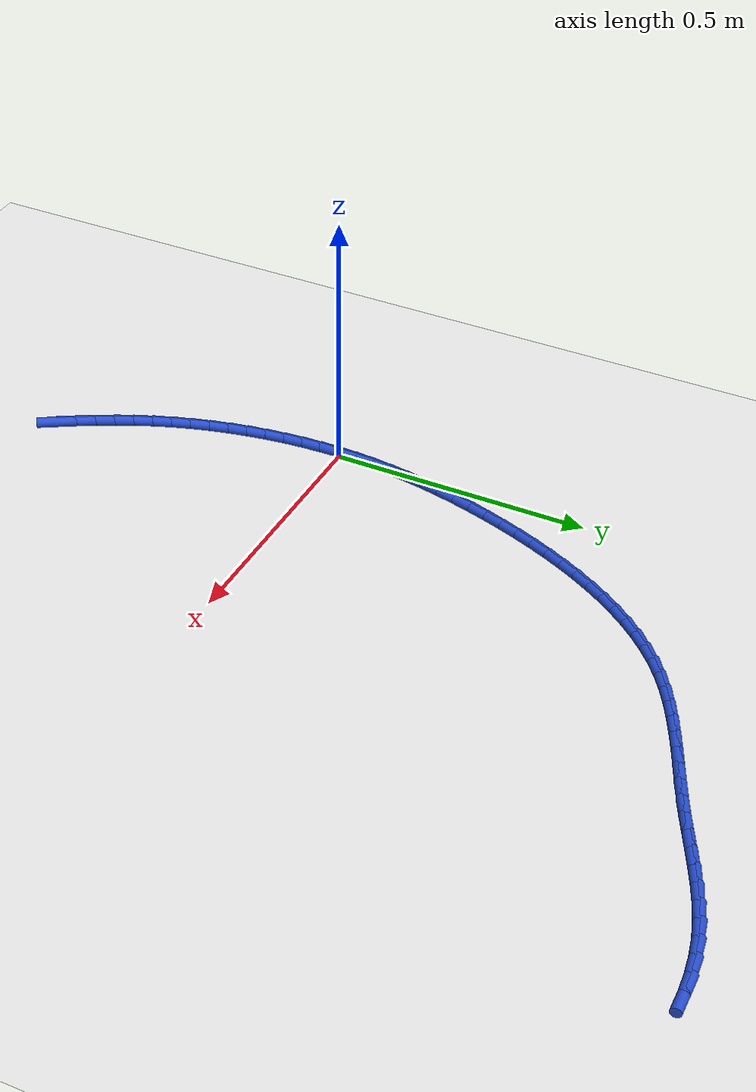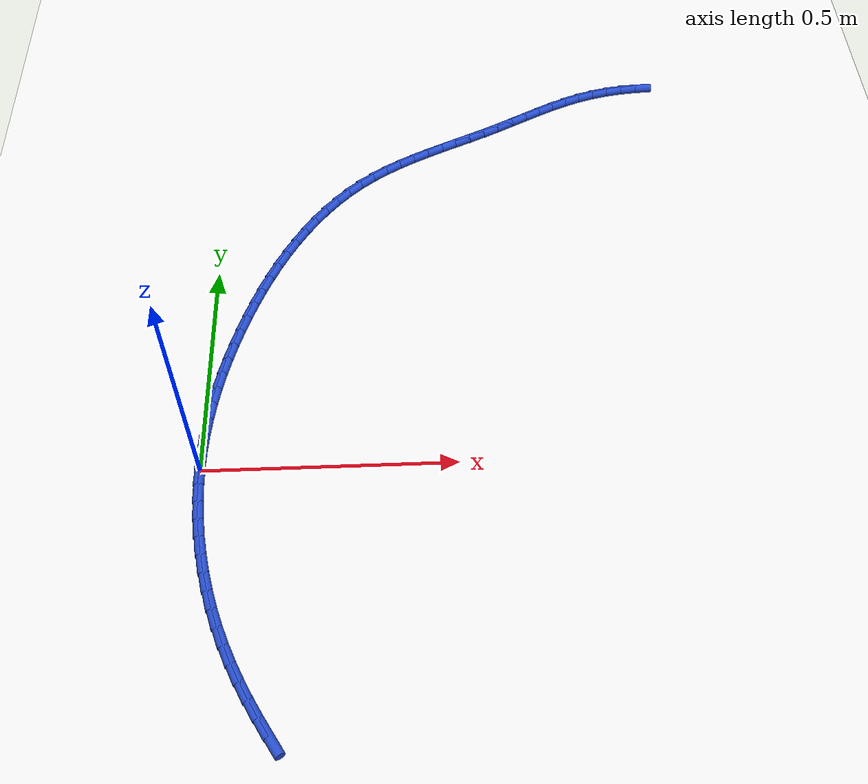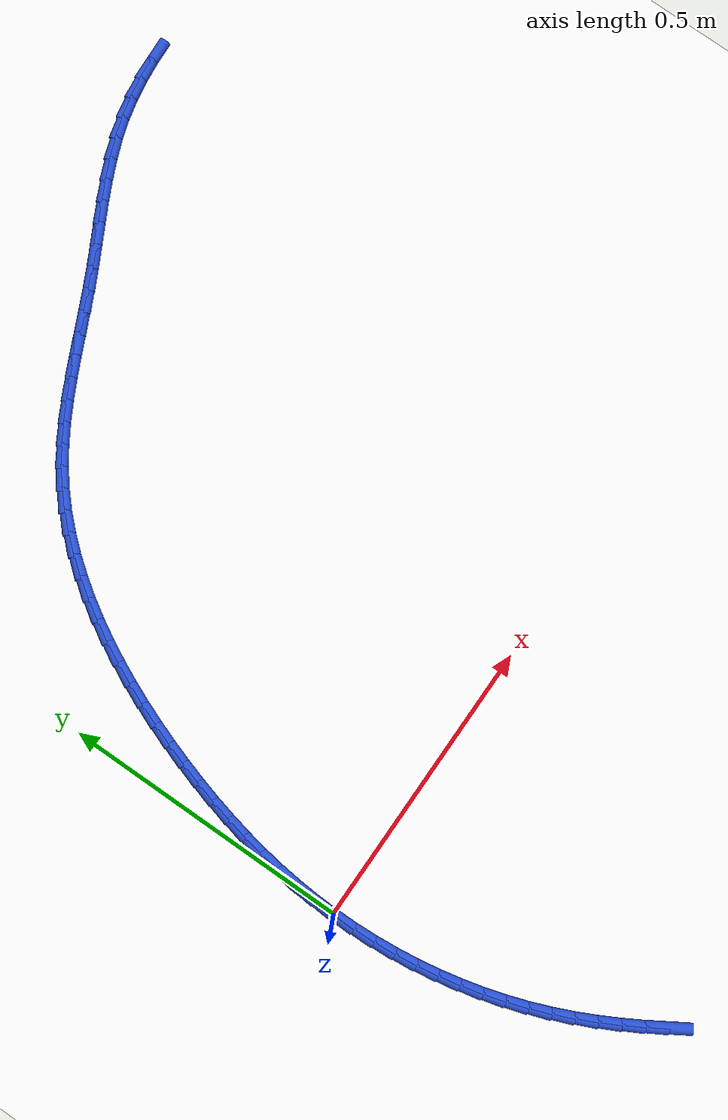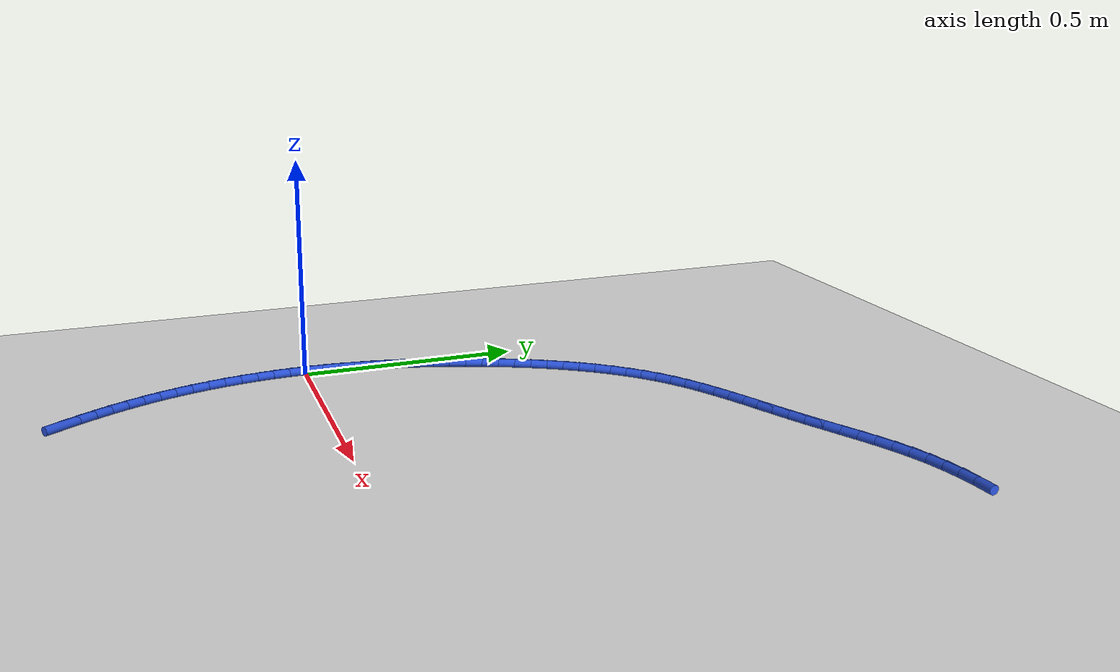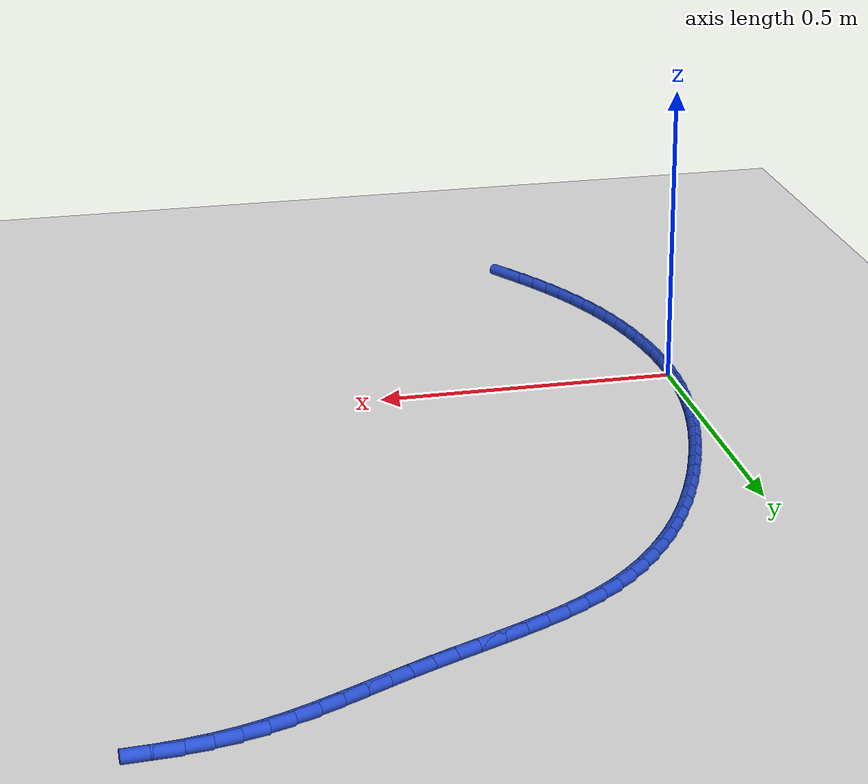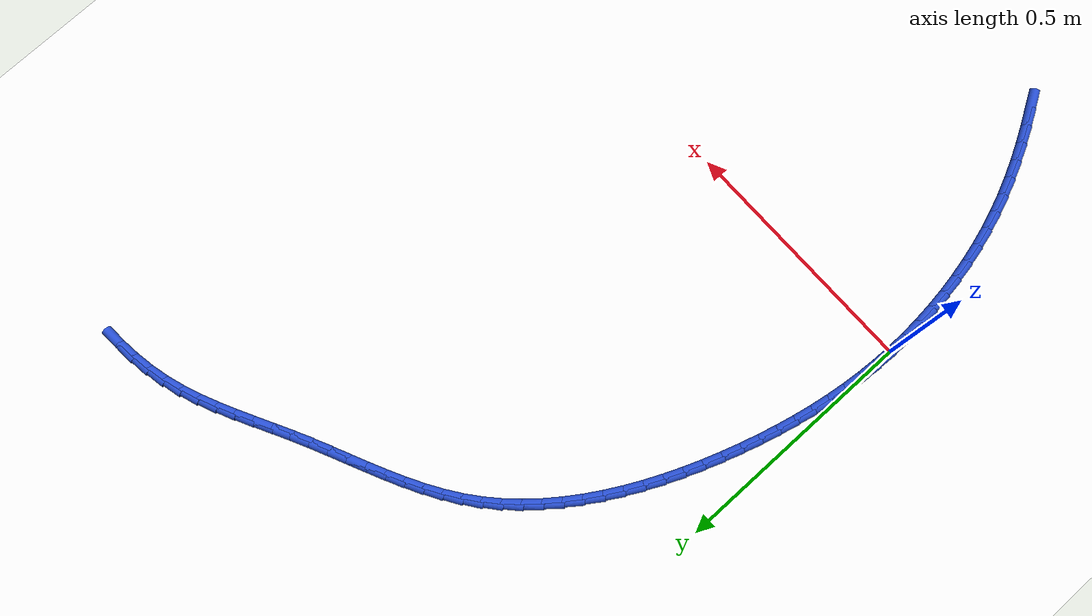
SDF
<sdf version="1.6">
 <world name="default">
  <model name="ground_plane">
   <static>1</static>
   <link name="link">
    <collision name="collision">
     <geometry><plane><normal>0 0 1</normal><size>100 100</size></plane></geometry>
     <surface><friction><ode><mu>100</mu><mu2>50</mu2></ode></friction></surface>
    </collision>
    <visual name="visual">
     <cast_shadows>0</cast_shadows>
     <geometry><plane><normal>0 0 1</normal><size>100 100</size></plane></geometry>
     <material>
      <script><uri>file://media/materials/scripts/gazebo.material</uri><name>Gazebo/WhiteGlow</name></script>
     </material>
    </visual>
   </link>
  </model>
  <model name="line">
   <link name="link_0">
    <pose>-2.7755575615628914e-17 -9.71445146547012e-17 0.01 0 1.57 1.542044267432709</pose>
    <collision name="collision">
     <geometry><cylinder><radius>0.01</radius><length>0.08</length></cylinder></geometry>
    </collision>
    <visual name="visual">
     <material>
      <script><name>Gazebo/Blue</name><uri>file://media/materials/scripts/gazebo.material</uri></script>
     </material>
     <geometry><cylinder><radius>0.01</radius><length>0.08</length></cylinder></geometry>
    </visual>
   </link>
   <link name="link_1">
    <pose>0.0010738321835704202 0.03733771721228712 0.01 0 1.57 1.5032818511181816</pose>
    <collision name="collision">
     <geometry><cylinder><radius>0.01</radius><length>0.08</length></cylinder></geometry>
    </collision>
    <visual name="visual">
     <material>
      <script><name>Gazebo/Blue</name><uri>file://media/materials/scripts/gazebo.material</uri></script>
     </material>
     <geometry><cylinder><radius>0.01</radius><length>0.08</length></cylinder></geometry>
    </visual>
   </link>
   <link name="link_2">
    <pose>0.0035869679635209934 0.07450480074108565 0.01 0 1.57 1.4658785739195797</pose>
    <collision name="collision">
     <geometry><cylinder><radius>0.01</radius><length>0.08</length></cylinder></geometry>
    </collision>
    <visual name="visual">
     <material>
      <script><name>Gazebo/Blue</name><uri>file://media/materials/scripts/gazebo.material</uri></script>
     </material>
     <geometry><cylinder><radius>0.01</radius><length>0.08</length></cylinder></geometry>
    </visual>
   </link>
   <link name="link_3">
    <pose>0.007484704561177816 0.11151878774079305 0.01 0 1.57 1.4299813160270398</pose>
    <collision name="collision">
     <geometry><cylinder><radius>0.01</radius><length>0.08</length></cylinder></geometry>
    </collision>
    <visual name="visual">
     <material>
      <script><name>Gazebo/Blue</name><uri>file://media/materials/scripts/gazebo.material</uri></script>
     </material>
     <geometry><cylinder><radius>0.01</radius><length>0.08</length></cylinder></geometry>
    </visual>
   </link>
   <link name="link_4">
    <pose>0.012712339197867031 0.14839721536580708 0.01 0 1.57 1.39570997917218</pose>
    <collision name="collision">
     <geometry><cylinder><radius>0.01</radius><length>0.08</length></cylinder></geometry>
    </collision>
    <visual name="visual">
     <material>
      <script><name>Gazebo/Blue</name><uri>file://media/materials/scripts/gazebo.material</uri></script>
     </material>
     <geometry><cylinder><radius>0.01</radius><length>0.08</length></cylinder></geometry>
    </visual>
   </link>
   <link name="link_5">
    <pose>0.01921516909491475 0.18515762077052528 0.01 0 1.57 1.3631578961786874</pose>
    <collision name="collision">
     <geometry><cylinder><radius>0.01</radius><length>0.08</length></cylinder></geometry>
    </collision>
    <visual name="visual">
     <material>
      <script><name>Gazebo/Blue</name><uri>file://media/materials/scripts/gazebo.material</uri></script>
     </material>
     <geometry><cylinder><radius>0.01</radius><length>0.08</length></cylinder></geometry>
    </visual>
   </link>
   <link name="link_6">
    <pose>0.026938491473647123 0.22181754110934537 0.01 0 1.57 1.332393237809248</pose>
    <collision name="collision">
     <geometry><cylinder><radius>0.01</radius><length>0.08</length></cylinder></geometry>
    </collision>
    <visual name="visual">
     <material>
      <script><name>Gazebo/Blue</name><uri>file://media/materials/scripts/gazebo.material</uri></script>
     </material>
     <geometry><cylinder><radius>0.01</radius><length>0.08</length></cylinder></geometry>
    </visual>
   </link>
   <link name="link_7">
    <pose>0.035827603555390275 0.2583945135366649 0.01 0 1.57 1.3034611595035999</pose>
    <collision name="collision">
     <geometry><cylinder><radius>0.01</radius><length>0.08</length></cylinder></geometry>
    </collision>
    <visual name="visual">
     <material>
      <script><name>Gazebo/Blue</name><uri>file://media/materials/scripts/gazebo.material</uri></script>
     </material>
     <geometry><cylinder><radius>0.01</radius><length>0.08</length></cylinder></geometry>
    </visual>
   </link>
   <link name="link_8">
    <pose>0.04582780256147033 0.29490607520688167 0.01 0 1.57 1.2763864294501093</pose>
    <collision name="collision">
     <geometry><cylinder><radius>0.01</radius><length>0.08</length></cylinder></geometry>
    </collision>
    <visual name="visual">
     <material>
      <script><name>Gazebo/Blue</name><uri>file://media/materials/scripts/gazebo.material</uri></script>
     </material>
     <geometry><cylinder><radius>0.01</radius><length>0.08</length></cylinder></geometry>
    </visual>
   </link>
   <link name="link_9">
    <pose>0.056884385713213415 0.3313697632743931 0.01 0 1.57 1.250950686429554</pose>
    <collision name="collision">
     <geometry><cylinder><radius>0.01</radius><length>0.08</length></cylinder></geometry>
    </collision>
    <visual name="visual">
     <material>
      <script><name>Gazebo/Blue</name><uri>file://media/materials/scripts/gazebo.material</uri></script>
     </material>
     <geometry><cylinder><radius>0.01</radius><length>0.08</length></cylinder></geometry>
    </visual>
   </link>
   <link name="link_10">
    <pose>0.06894845416542092 0.36779309989886144 0.01 0 1.57 1.2248352163170741</pose>
    <collision name="collision">
     <geometry><cylinder><radius>0.01</radius><length>0.08</length></cylinder></geometry>
    </collision>
    <visual name="visual">
     <material>
      <script><name>Gazebo/Blue</name><uri>file://media/materials/scripts/gazebo.material</uri></script>
     </material>
     <geometry><cylinder><radius>0.01</radius><length>0.08</length></cylinder></geometry>
    </visual>
   </link>
   <link name="link_11">
    <pose>0.08202943260990407 0.4040829668865384 0.01 0 1.57 1.1965557212852407</pose>
    <collision name="collision">
     <geometry><cylinder><radius>0.01</radius><length>0.08</length></cylinder></geometry>
    </collision>
    <visual name="visual">
     <material>
      <script><name>Gazebo/Blue</name><uri>file://media/materials/scripts/gazebo.material</uri></script>
     </material>
     <geometry><cylinder><radius>0.01</radius><length>0.08</length></cylinder></geometry>
    </visual>
   </link>
   <link name="link_12">
    <pose>0.0961704415835236 0.4400881020776531 0.01 0 1.57 1.1658818972682463</pose>
    <collision name="collision">
     <geometry><cylinder><radius>0.01</radius><length>0.08</length></cylinder></geometry>
    </collision>
    <visual name="visual">
     <material>
      <script><name>Gazebo/Blue</name><uri>file://media/materials/scripts/gazebo.material</uri></script>
     </material>
     <geometry><cylinder><radius>0.01</radius><length>0.08</length></cylinder></geometry>
    </visual>
   </link>
   <link name="link_13">
    <pose>0.11141501032960267 0.4756565380677785 0.01 0 1.57 1.1325795216238794</pose>
    <collision name="collision">
     <geometry><cylinder><radius>0.01</radius><length>0.08</length></cylinder></geometry>
    </collision>
    <visual name="visual">
     <material>
      <script><name>Gazebo/Blue</name><uri>file://media/materials/scripts/gazebo.material</uri></script>
     </material>
     <geometry><cylinder><radius>0.01</radius><length>0.08</length></cylinder></geometry>
    </visual>
   </link>
   <link name="link_14">
    <pose>0.1278066680914644 0.5106363074524874 0.01 0 1.57 1.0963960438225582</pose>
    <collision name="collision">
     <geometry><cylinder><radius>0.01</radius><length>0.08</length></cylinder></geometry>
    </collision>
    <visual name="visual">
     <material>
      <script><name>Gazebo/Blue</name><uri>file://media/materials/scripts/gazebo.material</uri></script>
     </material>
     <geometry><cylinder><radius>0.01</radius><length>0.08</length></cylinder></geometry>
    </visual>
   </link>
   <link name="link_15">
    <pose>0.14538894411243183 0.5448754428273527 0.01 0 1.57 1.057063886787971</pose>
    <collision name="collision">
     <geometry><cylinder><radius>0.01</radius><length>0.08</length></cylinder></geometry>
    </collision>
    <visual name="visual">
     <material>
      <script><name>Gazebo/Blue</name><uri>file://media/materials/scripts/gazebo.material</uri></script>
     </material>
     <geometry><cylinder><radius>0.01</radius><length>0.08</length></cylinder></geometry>
    </visual>
   </link>
   <link name="link_16">
    <pose>0.1642053676358281 0.578221976787947 0.01 0 1.57 1.0143063775570824</pose>
    <collision name="collision">
     <geometry><cylinder><radius>0.01</radius><length>0.08</length></cylinder></geometry>
    </collision>
    <visual name="visual">
     <material>
      <script><name>Gazebo/Blue</name><uri>file://media/materials/scripts/gazebo.material</uri></script>
     </material>
     <geometry><cylinder><radius>0.01</radius><length>0.08</length></cylinder></geometry>
    </visual>
   </link>
   <link name="link_17">
    <pose>0.1842994679049763 0.610523941929843 0.01 0 1.57 0.9678472984333139</pose>
    <collision name="collision">
     <geometry><cylinder><radius>0.01</radius><length>0.08</length></cylinder></geometry>
    </collision>
    <visual name="visual">
     <material>
      <script><name>Gazebo/Blue</name><uri>file://media/materials/scripts/gazebo.material</uri></script>
     </material>
     <geometry><cylinder><radius>0.01</radius><length>0.08</length></cylinder></geometry>
    </visual>
   </link>
   <link name="link_18">
    <pose>0.20571477416319972 0.641629370848614 0.01 0 1.57 0.9174251667930694</pose>
    <collision name="collision">
     <geometry><cylinder><radius>0.01</radius><length>0.08</length></cylinder></geometry>
    </collision>
    <visual name="visual">
     <material>
      <script><name>Gazebo/Blue</name><uri>file://media/materials/scripts/gazebo.material</uri></script>
     </material>
     <geometry><cylinder><radius>0.01</radius><length>0.08</length></cylinder></geometry>
    </visual>
   </link>
   <link name="link_19">
    <pose>0.22849481565382118 0.6713862961398324 0.01 0 1.57 0.862813296631405</pose>
    <collision name="collision">
     <geometry><cylinder><radius>0.01</radius><length>0.08</length></cylinder></geometry>
    </collision>
    <visual name="visual">
     <material>
      <script><name>Gazebo/Blue</name><uri>file://media/materials/scripts/gazebo.material</uri></script>
     </material>
     <geometry><cylinder><radius>0.01</radius><length>0.08</length></cylinder></geometry>
    </visual>
   </link>
   <link name="link_20">
    <pose>0.25268312162016404 0.699642750399071 0.01 0 1.57 0.8038463039100926</pose>
    <collision name="collision">
     <geometry><cylinder><radius>0.01</radius><length>0.08</length></cylinder></geometry>
    </collision>
    <visual name="visual">
     <material>
      <script><name>Gazebo/Blue</name><uri>file://media/materials/scripts/gazebo.material</uri></script>
     </material>
     <geometry><cylinder><radius>0.01</radius><length>0.08</length></cylinder></geometry>
    </visual>
   </link>
   <link name="link_21">
    <pose>0.2783232213055512 0.7262467662219028 0.01 0 1.57 0.7404527866926917</pose>
    <collision name="collision">
     <geometry><cylinder><radius>0.01</radius><length>0.08</length></cylinder></geometry>
    </collision>
    <visual name="visual">
     <material>
      <script><name>Gazebo/Blue</name><uri>file://media/materials/scripts/gazebo.material</uri></script>
     </material>
     <geometry><cylinder><radius>0.01</radius><length>0.08</length></cylinder></geometry>
    </visual>
   </link>
   <link name="link_22">
    <pose>0.305458643953306 0.7510463762039005 0.01 0 1.57 0.6727658747135454</pose>
    <collision name="collision">
     <geometry><cylinder><radius>0.01</radius><length>0.08</length></cylinder></geometry>
    </collision>
    <visual name="visual">
     <material>
      <script><name>Gazebo/Blue</name><uri>file://media/materials/scripts/gazebo.material</uri></script>
     </material>
     <geometry><cylinder><radius>0.01</radius><length>0.08</length></cylinder></geometry>
    </visual>
   </link>
   <link name="link_23">
    <pose>0.3341315758442072 0.7738919933109771 0.01 0 1.57 0.6062472029265614</pose>
    <collision name="collision">
     <geometry><cylinder><radius>0.01</radius><length>0.08</length></cylinder></geometry>
    </collision>
    <visual name="visual">
     <material>
      <script><name>Gazebo/Blue</name><uri>file://media/materials/scripts/gazebo.material</uri></script>
     </material>
     <geometry><cylinder><radius>0.01</radius><length>0.08</length></cylinder></geometry>
    </visual>
   </link>
   <link name="link_24">
    <pose>0.3642894904764714 0.7948019067460971 0.01 0 1.57 0.5498935238299388</pose>
    <collision name="collision">
     <geometry><cylinder><radius>0.01</radius><length>0.08</length></cylinder></geometry>
    </collision>
    <visual name="visual">
     <material>
      <script><name>Gazebo/Blue</name><uri>file://media/materials/scripts/gazebo.material</uri></script>
     </material>
     <geometry><cylinder><radius>0.01</radius><length>0.08</length></cylinder></geometry>
    </visual>
   </link>
   <link name="link_25">
    <pose>0.3957242946358761 0.8140701441457134 0.01 0 1.57 0.5046655770979783</pose>
    <collision name="collision">
     <geometry><cylinder><radius>0.01</radius><length>0.08</length></cylinder></geometry>
    </collision>
    <visual name="visual">
     <material>
      <script><name>Gazebo/Blue</name><uri>file://media/materials/scripts/gazebo.material</uri></script>
     </material>
     <geometry><cylinder><radius>0.01</radius><length>0.08</length></cylinder></geometry>
    </visual>
   </link>
   <link name="link_26">
    <pose>0.4282134338351014 0.8320163654215093 0.01 0 1.57 0.47042869304620244</pose>
    <collision name="collision">
     <geometry><cylinder><radius>0.01</radius><length>0.08</length></cylinder></geometry>
    </collision>
    <visual name="visual">
     <material>
      <script><name>Gazebo/Blue</name><uri>file://media/materials/scripts/gazebo.material</uri></script>
     </material>
     <geometry><cylinder><radius>0.01</radius><length>0.08</length></cylinder></geometry>
    </visual>
   </link>
   <link name="link_27">
    <pose>0.46153435358682704 0.8489602304851668 0.01 0 1.57 0.4469137473253139</pose>
    <collision name="collision">
     <geometry><cylinder><radius>0.01</radius><length>0.08</length></cylinder></geometry>
    </collision>
    <visual name="visual">
     <material>
      <script><name>Gazebo/Blue</name><uri>file://media/materials/scripts/gazebo.material</uri></script>
     </material>
     <geometry><cylinder><radius>0.01</radius><length>0.08</length></cylinder></geometry>
    </visual>
   </link>
   <link name="link_28">
    <pose>0.49546449940373416 0.8652213992483698 0.01 0 1.57 0.4338386257141746</pose>
    <collision name="collision">
     <geometry><cylinder><radius>0.01</radius><length>0.08</length></cylinder></geometry>
    </collision>
    <visual name="visual">
     <material>
      <script><name>Gazebo/Blue</name><uri>file://media/materials/scripts/gazebo.material</uri></script>
     </material>
     <geometry><cylinder><radius>0.01</radius><length>0.08</length></cylinder></geometry>
    </visual>
   </link>
   <link name="link_29">
    <pose>0.5297813167985025 0.8811195316228012 0.01 0 1.57 0.4309837652098422</pose>
    <collision name="collision">
     <geometry><cylinder><radius>0.01</radius><length>0.08</length></cylinder></geometry>
    </collision>
    <visual name="visual">
     <material>
      <script><name>Gazebo/Blue</name><uri>file://media/materials/scripts/gazebo.material</uri></script>
     </material>
     <geometry><cylinder><radius>0.01</radius><length>0.08</length></cylinder></geometry>
    </visual>
   </link>
   <link name="link_30">
    <pose>0.5642622512838126 0.8969742875201439 0.01 0 1.57 0.4382292288106292</pose>
    <collision name="collision">
     <geometry><cylinder><radius>0.01</radius><length>0.08</length></cylinder></geometry>
    </collision>
    <visual name="visual">
     <material>
      <script><name>Gazebo/Blue</name><uri>file://media/materials/scripts/gazebo.material</uri></script>
     </material>
     <geometry><cylinder><radius>0.01</radius><length>0.08</length></cylinder></geometry>
    </visual>
   </link>
   <link name="link_31">
    <pose>0.5986847483723445 0.9131053268520808 0.01 0 1.57 0.4554360783586779</pose>
    <collision name="collision">
     <geometry><cylinder><radius>0.01</radius><length>0.08</length></cylinder></geometry>
    </collision>
    <visual name="visual">
     <material>
      <script><name>Gazebo/Blue</name><uri>file://media/materials/scripts/gazebo.material</uri></script>
     </material>
     <geometry><cylinder><radius>0.01</radius><length>0.08</length></cylinder></geometry>
    </visual>
   </link>
   <link name="link_32">
    <pose>0.6328283154429344 0.9298280719281702 0.01 0 1.57 0.47427009010933124</pose>
    <collision name="collision">
     <geometry><cylinder><radius>0.01</radius><length>0.08</length></cylinder></geometry>
    </collision>
    <visual name="visual">
     <material>
      <script><name>Gazebo/Blue</name><uri>file://media/materials/scripts/gazebo.material</uri></script>
     </material>
     <geometry><cylinder><radius>0.01</radius><length>0.08</length></cylinder></geometry>
    </visual>
   </link>
   <link name="link_33">
    <pose>0.6666120968548185 0.9471709594245181 0.01 0 1.57 0.48117577384107985</pose>
    <collision name="collision">
     <geometry><cylinder><radius>0.01</radius><length>0.08</length></cylinder></geometry>
    </collision>
    <visual name="visual">
     <material>
      <script><name>Gazebo/Blue</name><uri>file://media/materials/scripts/gazebo.material</uri></script>
     </material>
     <geometry><cylinder><radius>0.01</radius><length>0.08</length></cylinder></geometry>
    </visual>
   </link>
   <link name="link_34">
    <pose>0.7001813645586757 0.9646976825811728 0.01 0 1.57 0.47483751791863194</pose>
    <collision name="collision">
     <geometry><cylinder><radius>0.01</radius><length>0.08</length></cylinder></geometry>
    </collision>
    <visual name="visual">
     <material>
      <script><name>Gazebo/Blue</name><uri>file://media/materials/scripts/gazebo.material</uri></script>
     </material>
     <geometry><cylinder><radius>0.01</radius><length>0.08</length></cylinder></geometry>
    </visual>
   </link>
   <link name="link_35">
    <pose>0.7337020207246079 0.9819295348629115 0.01 0 1.57 0.45503249738478835</pose>
    <collision name="collision">
     <geometry><cylinder><radius>0.01</radius><length>0.08</length></cylinder></geometry>
    </collision>
    <visual name="visual">
     <material>
      <script><name>Gazebo/Blue</name><uri>file://media/materials/scripts/gazebo.material</uri></script>
     </material>
     <geometry><cylinder><radius>0.01</radius><length>0.08</length></cylinder></geometry>
    </visual>
   </link>
   <link name="link_36">
    <pose>0.7673399675227145 0.9983878097345089 0.01 0 1.57 0.4214182944513058</pose>
    <collision name="collision">
     <geometry><cylinder><radius>0.01</radius><length>0.08</length></cylinder></geometry>
    </collision>
    <visual name="visual">
     <material>
      <script><name>Gazebo/Blue</name><uri>file://media/materials/scripts/gazebo.material</uri></script>
     </material>
     <geometry><cylinder><radius>0.01</radius><length>0.08</length></cylinder></geometry>
    </visual>
   </link>
   <link name="link_37">
    <pose>0.8012611071230961 1.013593800660742 0.01 0 1.57 0.3736379798110971</pose>
    <collision name="collision">
     <geometry><cylinder><radius>0.01</radius><length>0.08</length></cylinder></geometry>
    </collision>
    <visual name="visual">
     <material>
      <script><name>Gazebo/Blue</name><uri>file://media/materials/scripts/gazebo.material</uri></script>
     </material>
     <geometry><cylinder><radius>0.01</radius><length>0.08</length></cylinder></geometry>
    </visual>
   </link>
   <link name="link_38">
    <pose>0.8356313416958536 1.027068801106387 0.01 0 1.57 0.31151806013105926</pose>
    <collision name="collision">
     <geometry><cylinder><radius>0.01</radius><length>0.08</length></cylinder></geometry>
    </collision>
    <visual name="visual">
     <material>
      <script><name>Gazebo/Blue</name><uri>file://media/materials/scripts/gazebo.material</uri></script>
     </material>
     <geometry><cylinder><radius>0.01</radius><length>0.08</length></cylinder></geometry>
    </visual>
   </link>
   <link name="link_39">
    <pose>0.8706165675289643 1.0383341189920017 0.01 0 1.57 0.23914272656263086</pose>
    <collision name="collision">
     <geometry><cylinder><radius>0.01</radius><length>0.08</length></cylinder></geometry>
    </collision>
    <visual name="visual">
     <material>
      <script><name>Gazebo/Blue</name><uri>file://media/materials/scripts/gazebo.material</uri></script>
     </material>
     <geometry><cylinder><radius>0.01</radius><length>0.08</length></cylinder></geometry>
    </visual>
   </link>
   <link name="link_40">
    <pose>0.9063296965223263 1.0470412755712806 0.01 0 1.57 0.17013097815499734</pose>
    <collision name="collision">
     <geometry><cylinder><radius>0.01</radius><length>0.08</length></cylinder></geometry>
    </collision>
    <visual name="visual">
     <material>
      <script><name>Gazebo/Blue</name><uri>file://media/materials/scripts/gazebo.material</uri></script>
     </material>
     <geometry><cylinder><radius>0.01</radius><length>0.08</length></cylinder></geometry>
    </visual>
   </link>
   <link name="link_41">
    <pose>0.9427014120818282 1.0532896330649848 0.01 0 1.57 0.10751787181526315</pose>
    <collision name="collision">
     <geometry><cylinder><radius>0.01</radius><length>0.08</length></cylinder></geometry>
    </collision>
    <visual name="visual">
     <material>
      <script><name>Gazebo/Blue</name><uri>file://media/materials/scripts/gazebo.material</uri></script>
     </material>
     <geometry><cylinder><radius>0.01</radius><length>0.08</length></cylinder></geometry>
    </visual>
   </link>
   <link name="link_42">
    <pose>0.9796232513905778 1.0572747586390032 0.01 0 1.57 0.05127410859718429</pose>
    <collision name="collision">
     <geometry><cylinder><radius>0.01</radius><length>0.08</length></cylinder></geometry>
    </collision>
    <visual name="visual">
     <material>
      <script><name>Gazebo/Blue</name><uri>file://media/materials/scripts/gazebo.material</uri></script>
     </material>
     <geometry><cylinder><radius>0.01</radius><length>0.08</length></cylinder></geometry>
    </visual>
   </link>
   <link name="link_165">
    <pose>0.15638919492611264 -0.5301284128491941 0.01 0 1.57 -1.0205220934646537</pose>
    <collision name="collision">
     <geometry><cylinder><radius>0.01</radius><length>0.08</length></cylinder></geometry>
    </collision>
    <visual name="visual">
     <material>
      <script><name>Gazebo/Blue</name><uri>file://media/materials/scripts/gazebo.material</uri></script>
     </material>
     <geometry><cylinder><radius>0.01</radius><length>0.08</length></cylinder></geometry>
    </visual>
   </link>
   <link name="link_166">
    <pose>0.13684378204337386 -0.49826864522250836 0.01 0 1.57 -1.0497771166887049</pose>
    <collision name="collision">
     <geometry><cylinder><radius>0.01</radius><length>0.08</length></cylinder></geometry>
    </collision>
    <visual name="visual">
     <material>
      <script><name>Gazebo/Blue</name><uri>file://media/materials/scripts/gazebo.material</uri></script>
     </material>
     <geometry><cylinder><radius>0.01</radius><length>0.08</length></cylinder></geometry>
    </visual>
   </link>
   <link name="link_167">
    <pose>0.11835521975296999 -0.4660538895473574 0.01 0 1.57 -1.0823603625370444</pose>
    <collision name="collision">
     <geometry><cylinder><radius>0.01</radius><length>0.08</length></cylinder></geometry>
    </collision>
    <visual name="visual">
     <material>
      <script><name>Gazebo/Blue</name><uri>file://media/materials/scripts/gazebo.material</uri></script>
     </material>
     <geometry><cylinder><radius>0.01</radius><length>0.08</length></cylinder></geometry>
    </visual>
   </link>
   <link name="link_168">
    <pose>0.1010005478385358 -0.43339431368188897 0.01 0 1.57 -1.1181348326467537</pose>
    <collision name="collision">
     <geometry><cylinder><radius>0.01</radius><length>0.08</length></cylinder></geometry>
    </collision>
    <visual name="visual">
     <material>
      <script><name>Gazebo/Blue</name><uri>file://media/materials/scripts/gazebo.material</uri></script>
     </material>
     <geometry><cylinder><radius>0.01</radius><length>0.08</length></cylinder></geometry>
    </visual>
   </link>
   <link name="link_169">
    <pose>0.08485680608370627 -0.4002000854842513 0.01 0 1.57 -1.156895612736155</pose>
    <collision name="collision">
     <geometry><cylinder><radius>0.01</radius><length>0.08</length></cylinder></geometry>
    </collision>
    <visual name="visual">
     <material>
      <script><name>Gazebo/Blue</name><uri>file://media/materials/scripts/gazebo.material</uri></script>
     </material>
     <geometry><cylinder><radius>0.01</radius><length>0.08</length></cylinder></geometry>
    </visual>
   </link>
   <link name="link_170">
    <pose>0.070001034272116 -0.36638137281259187 0.01 0 1.57 -1.1983501522015703</pose>
    <collision name="collision">
     <geometry><cylinder><radius>0.01</radius><length>0.08</length></cylinder></geometry>
    </collision>
    <visual name="visual">
     <material>
      <script><name>Gazebo/Blue</name><uri>file://media/materials/scripts/gazebo.material</uri></script>
     </material>
     <geometry><cylinder><radius>0.01</radius><length>0.08</length></cylinder></geometry>
    </visual>
   </link>
   <link name="link_171">
    <pose>0.05650998499905453 -0.3318491498399385 0.01 0 1.57 -1.2409742884494293</pose>
    <collision name="collision">
     <geometry><cylinder><radius>0.01</radius><length>0.08</length></cylinder></geometry>
    </collision>
    <visual name="visual">
     <material>
      <script><name>Gazebo/Blue</name><uri>file://media/materials/scripts/gazebo.material</uri></script>
     </material>
     <geometry><cylinder><radius>0.01</radius><length>0.08</length></cylinder></geometry>
    </visual>
   </link>
   <link name="link_172">
    <pose>0.0444367335879962 -0.2965808674499023 0.01 0 1.57 -1.2826687113010748</pose>
    <collision name="collision">
     <geometry><cylinder><radius>0.01</radius><length>0.08</length></cylinder></geometry>
    </collision>
    <visual name="visual">
     <material>
      <script><name>Gazebo/Blue</name><uri>file://media/materials/scripts/gazebo.material</uri></script>
     </material>
     <geometry><cylinder><radius>0.01</radius><length>0.08</length></cylinder></geometry>
    </visual>
   </link>
   <link name="link_173">
    <pose>0.03379337279507135 -0.2606690398783988 0.01 0 1.57 -1.323428067748161</pose>
    <collision name="collision">
     <geometry><cylinder><radius>0.01</radius><length>0.08</length></cylinder></geometry>
    </collision>
    <visual name="visual">
     <material>
      <script><name>Gazebo/Blue</name><uri>file://media/materials/scripts/gazebo.material</uri></script>
     </material>
     <geometry><cylinder><radius>0.01</radius><length>0.08</length></cylinder></geometry>
    </visual>
   </link>
   <link name="link_174">
    <pose>0.02458791708989504 -0.22421763162784705 0.01 0 1.57 -1.3634598383562715</pose>
    <collision name="collision">
     <geometry><cylinder><radius>0.01</radius><length>0.08</length></cylinder></geometry>
    </collision>
    <visual name="visual">
     <material>
      <script><name>Gazebo/Blue</name><uri>file://media/materials/scripts/gazebo.material</uri></script>
     </material>
     <geometry><cylinder><radius>0.01</radius><length>0.08</length></cylinder></geometry>
    </visual>
   </link>
   <link name="link_175">
    <pose>0.01682838094208232 -0.18733060720066633 0.01 0 1.57 -1.402969566357903</pose>
    <collision name="collision">
     <geometry><cylinder><radius>0.01</radius><length>0.08</length></cylinder></geometry>
    </collision>
    <visual name="visual">
     <material>
      <script><name>Gazebo/Blue</name><uri>file://media/materials/scripts/gazebo.material</uri></script>
     </material>
     <geometry><cylinder><radius>0.01</radius><length>0.08</length></cylinder></geometry>
    </visual>
   </link>
   <link name="link_176">
    <pose>0.010522778821248156 -0.15011193109927515 0.01 0 1.57 -1.442161452315583</pose>
    <collision name="collision">
     <geometry><cylinder><radius>0.01</radius><length>0.08</length></cylinder></geometry>
    </collision>
    <visual name="visual">
     <material>
      <script><name>Gazebo/Blue</name><uri>file://media/materials/scripts/gazebo.material</uri></script>
     </material>
     <geometry><cylinder><radius>0.01</radius><length>0.08</length></cylinder></geometry>
    </visual>
   </link>
   <link name="link_177">
    <pose>0.005679125197007861 -0.11266556782609415 0.01 0 1.57 -1.481239270347731</pose>
    <collision name="collision">
     <geometry><cylinder><radius>0.01</radius><length>0.08</length></cylinder></geometry>
    </collision>
    <visual name="visual">
     <material>
      <script><name>Gazebo/Blue</name><uri>file://media/materials/scripts/gazebo.material</uri></script>
     </material>
     <geometry><cylinder><radius>0.01</radius><length>0.08</length></cylinder></geometry>
    </visual>
   </link>
   <link name="link_178">
    <pose>0.002305434538976357 -0.07509548188354186 0.01 0 1.57 -1.520407489913538</pose>
    <collision name="collision">
     <geometry><cylinder><radius>0.01</radius><length>0.08</length></cylinder></geometry>
    </collision>
    <visual name="visual">
     <material>
      <script><name>Gazebo/Blue</name><uri>file://media/materials/scripts/gazebo.material</uri></script>
     </material>
     <geometry><cylinder><radius>0.01</radius><length>0.08</length></cylinder></geometry>
    </visual>
   </link>
   <link name="link_179">
    <pose>0.0004097213167687094 -0.03750563777403746 0.01 0 1.57 -1.5598725019084616</pose>
    <collision name="collision">
     <geometry><cylinder><radius>0.01</radius><length>0.08</length></cylinder></geometry>
    </collision>
    <visual name="visual">
     <material>
      <script><name>Gazebo/Blue</name><uri>file://media/materials/scripts/gazebo.material</uri></script>
     </material>
     <geometry><cylinder><radius>0.01</radius><length>0.08</length></cylinder></geometry>
    </visual>
   </link>
   <link name="link_180">
    <pose>-1.9081958235744878e-17 -2.1510571102112408e-16 0.01 0 1.57 1.54174880101701</pose>
    <collision name="collision">
     <geometry><cylinder><radius>0.01</radius><length>0.08</length></cylinder></geometry>
    </collision>
    <visual name="visual">
     <material>
      <script><name>Gazebo/Blue</name><uri>file://media/materials/scripts/gazebo.material</uri></script>
     </material>
     <geometry><cylinder><radius>0.01</radius><length>0.08</length></cylinder></geometry>
    </visual>
   </link>
   <link name="link_181">
    <pose>0.001084285058285242 0.03731746693615073 0.01 0 1.57 1.5417488010170097</pose>
    <collision name="collision">
     <geometry><cylinder><radius>0.01</radius><length>0.08</length></cylinder></geometry>
    </collision>
    <visual name="visual">
     <material>
      <script><name>Gazebo/Blue</name><uri>file://media/materials/scripts/gazebo.material</uri></script>
     </material>
     <geometry><cylinder><radius>0.01</radius><length>0.08</length></cylinder></geometry>
    </visual>
   </link>
  </model>
 </world>
</sdf>
